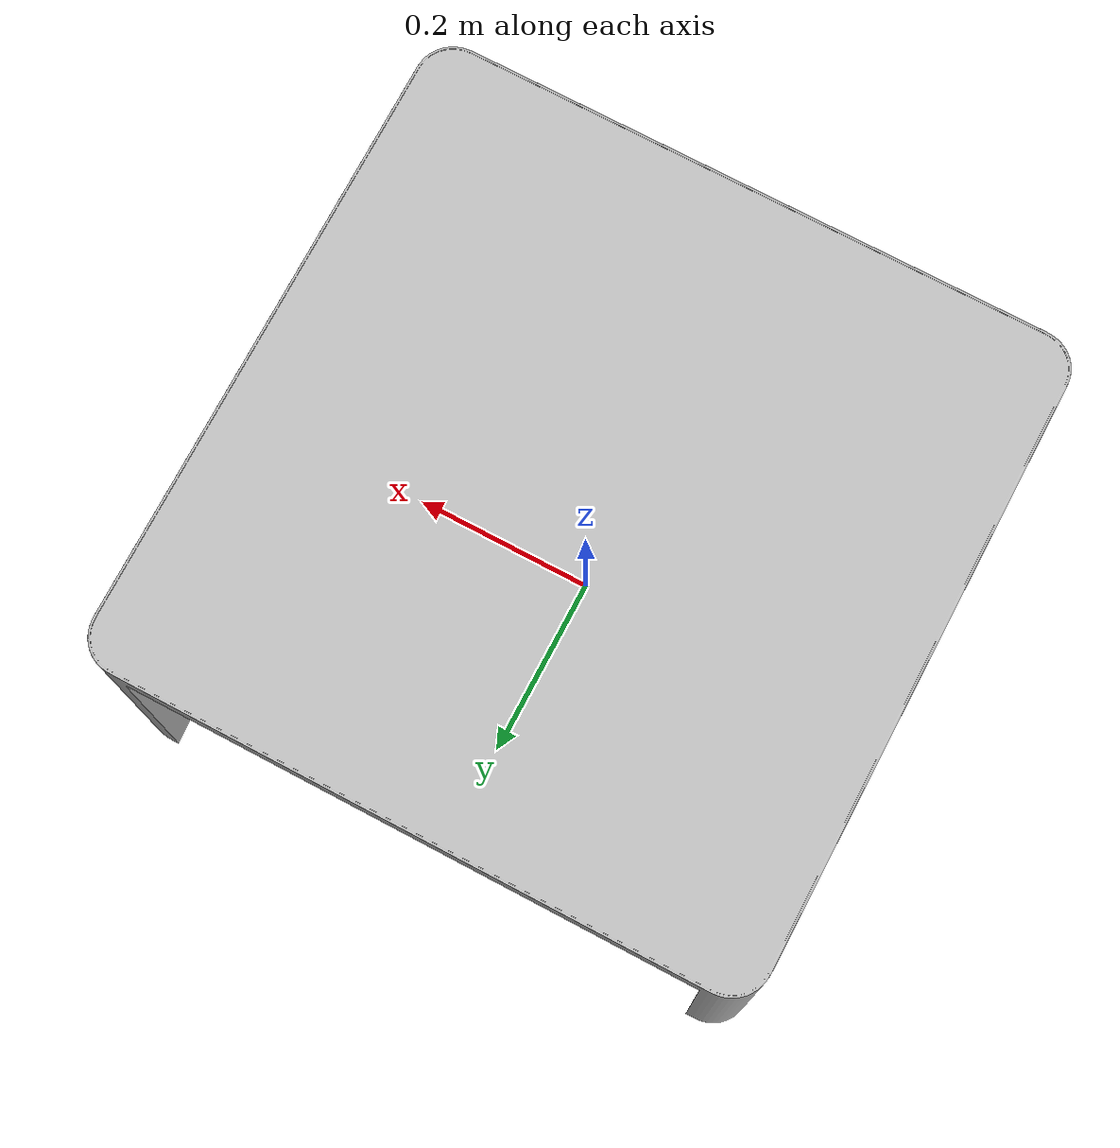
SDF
<?xml version="1.0" ?>
<sdf version="1.7">
  <model name="table">
    <static>true</static>
    <link name="link">
      <collision name="collision">
        <geometry>
          <mesh>
            <uri>model://table/meshes/table.dae</uri>
          </mesh>
        </geometry>
      </collision>
      <visual name="visual">
        <geometry>
          <mesh>
            <uri>model://table/meshes/table.dae</uri>
          </mesh>
        </geometry>
      </visual>
    </link>
  </model>
</sdf>
